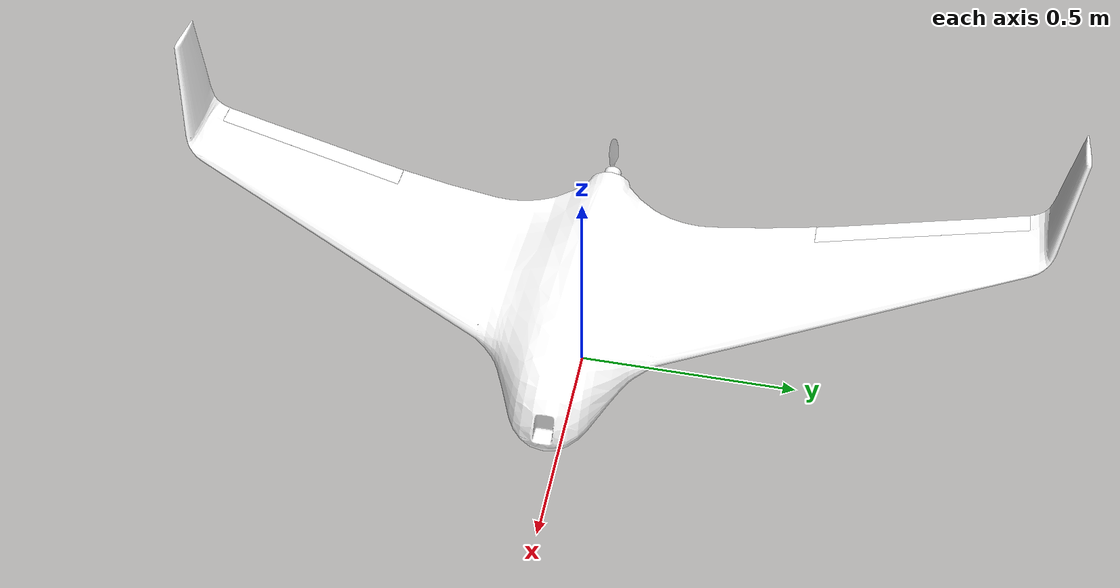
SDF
<?xml version="1.0"?>
<sdf version="1.7">
  <model name="skywalker_x8">
    <pose>0 0 0.246 0 0 0</pose>

    <link name='base_link'>
      <pose>0 0 0 0 0 0</pose>
      <inertial>
        <pose>0 0 0 0 0 0</pose>
        <mass>4.5</mass>
        <inertia>
          <ixx>0.45</ixx>
          <ixy>0</ixy>
          <ixz>0.06</ixz>
          <iyy>0.325</iyy>
          <iyz>0</iyz>
          <izz>0.75</izz>
        </inertia>
      </inertial>
      <collision name="skid_nose">
        <pose> 0.24  0.00 -0.201 0 0 0</pose>
        <geometry><sphere><radius>0.045</radius></sphere></geometry>
        <surface>
          <friction><ode><mu>0.15</mu><mu2>0.15</mu2></ode></friction>
          <contact><ode><min_depth>0.003</min_depth><kp>1e6</kp><kd>100</kd></ode></contact>
          <bounce><restitution_coefficient>0</restitution_coefficient></bounce>
        </surface>
      </collision>
      <collision name="skid_left">
        <pose>-0.22  0.30 -0.201 0 0 0</pose>
        <geometry><sphere><radius>0.045</radius></sphere></geometry>
        <surface>
          <friction><ode><mu>0.15</mu><mu2>0.15</mu2></ode></friction>
          <contact><ode><min_depth>0.003</min_depth><kp>1e6</kp><kd>100</kd></ode></contact>
          <bounce><restitution_coefficient>0</restitution_coefficient></bounce>
        </surface>
      </collision>
      <collision name="skid_right">
        <pose>-0.22 -0.30 -0.201 0 0 0</pose>
        <geometry><sphere><radius>0.045</radius></sphere></geometry>
        <surface>
          <friction><ode><mu>0.15</mu><mu2>0.15</mu2></ode></friction>
          <contact><ode><min_depth>0.003</min_depth><kp>1e6</kp><kd>100</kd></ode></contact>
          <bounce><restitution_coefficient>0</restitution_coefficient></bounce>
        </surface>
      </collision>
      <visual name='base_link_visual'>
        <geometry>
          <mesh>
            <uri>model://skywalker_x8/meshes/x8_wing.dae</uri>
          </mesh>
        </geometry>
        <material>
          <diffuse>1.0 1.0 1.0</diffuse>
          <specular>1.0 1.0 1.0</specular>
          <pbr>
            <metal>
                <albedo_map>model://skywalker_x8/materials/textures/x8.tga</albedo_map>
                <metalness>0.1</metalness>
            </metal>
          </pbr>
        </material>
      </visual>
      <visual name='m4'>
        <pose>-0.361 0 0.0 0.000000 1.570796 0.000000</pose>
        <geometry>
          <cylinder>
            <length>0.035</length>
            <radius>0.02</radius>
          </cylinder>
        </geometry>
        <material>
          <ambient>1 1 1</ambient>
          <diffuse>1 1 1</diffuse>
          <specular>1 1 1</specular>
          <pbr>
            <metal>
              <albedo_map>model://skywalker_x8/materials/textures/blue_metal/blue_metal_basecolor.jpg</albedo_map>
              <metalness_map>model://skywalker_x8/materials/textures/blue_metal/blue_metal_metallic.jpg</metalness_map>
              <normal_map>model://skywalker_x8/materials/textures/blue_metal/blue_metal_normal.jpg</normal_map>
              <roughness_map>model://skywalker_x8/materials/textures/blue_metal/blue_metal_roughness.jpg</roughness_map>
              <roughness>1.0</roughness>
              <metalness>1.0</metalness>
            </metal>
          </pbr>
        </material>
      </visual>
      <!-- save for debugging use -->
      <sensor name="fpv_camera" type="camera">
        <pose>0.55 0 0.06 0 0.140 0</pose>
        <always_on>1</always_on>
        <update_rate>10</update_rate>
        <visualize>true</visualize>
        <camera name="fpv">
          <horizontal_fov>1.204</horizontal_fov>
          <image><width>1280</width><height>720</height><format>R8G8B8</format></image>
          <clip><near>0.1</near><far>1500</far></clip>
        </camera>
        <plugin name="camera_stream" filename="libCameraStreamPlugin.so">
          <port>8610</port>
          <label>fixed-wing FPV</label>
          <quality>70</quality>
          <shrink>1</shrink>
          <sleep_when_idle>0</sleep_when_idle>
        </plugin>
      </sensor>

    </link>

    <link name='rotor_pusher'>
      <pose>-0.385 0 0.0 0.000000 1.570796 0.000000</pose>
      <inertial>
        <mass>0.025</mass>
        <inertia>
          <ixx>9.75e-06</ixx>
          <ixy>0</ixy>
          <ixz>0</ixz>
          <iyy>0.000166704</iyy>
          <iyz>0</iyz>
          <izz>0.000167604</izz>
        </inertia>
      </inertial>
      <collision name='collision'>
        <pose>0 0 0 0 0 0</pose>
        <geometry>
          <cylinder>
            <length>0.005</length>
            <radius>0.065</radius>
          </cylinder>
        </geometry>
      </collision>
      <visual name='visual'>
        <pose>0 0 0 0 0 0</pose>
        <geometry>
          <mesh>
            <scale>0.8 0.8 0.8</scale>
            <uri>model://skywalker_x8/meshes/iris_prop_ccw.dae</uri>
          </mesh>
        </geometry>
        <material>
          <diffuse>1.0 1.0 1.0</diffuse>
          <specular>1.0 1.0 1.0</specular>
          <pbr>
            <metal>
                <albedo_map>model://skywalker_x8/materials/textures/x8.tga</albedo_map>
                <metalness>0.5</metalness>
            </metal>
          </pbr>
        </material>
      </visual>
    </link>
    <joint name='rotor_pusher_joint' type='revolute'>
      <child>rotor_pusher</child>
      <parent>base_link</parent>
      <axis>
        <xyz>0 0 1</xyz>
        <limit>
          <lower>-1e+16</lower>
          <upper>1e+16</upper>
        </limit>
        <dynamics>
          <damping>0.002</damping>
        </dynamics>
        <use_parent_model_frame>1</use_parent_model_frame>
      </axis>
    </joint>

    <link name="left_elevon">
      <inertial>
        <mass>0.1</mass>
        <inertia>
          <ixx>0.000102319</ixx>
          <ixy>0</ixy>
          <iyy>0.00334417</iyy>
          <ixz>0</ixz>
          <iyz>0</iyz>
          <izz>0.003446072</izz>
        </inertia>
        <pose>-0.30 0.75 -0.005 0 0 0</pose>
      </inertial>
      <visual name='left_elevon_visual'>
        <geometry>
          <mesh>
            <uri>model://skywalker_x8/meshes/x8_elevon_left.dae</uri>
          </mesh>
        </geometry>
        <material>
          <diffuse>1.0 1.0 1.0</diffuse>
          <specular>1.0 1.0 1.0</specular>
          <pbr>
            <metal>
                <albedo_map>model://skywalker_x8/materials/textures/x8.tga</albedo_map>
                <metalness>0.1</metalness>
            </metal>
          </pbr>
        </material>
      </visual>
    </link>

    <link name="right_elevon">
      <inertial>
        <mass>0.1</mass>
        <inertia>
          <ixx>0.000102319</ixx>
          <ixy>0</ixy>
          <iyy>0.00334417</iyy>
          <ixz>0</ixz>
          <iyz>0</iyz>
          <izz>0.003446072</izz>
        </inertia>
        <pose>-0.30 -0.75 -0.005 0 0 0</pose>
      </inertial>
      <visual name='right_elevon_visual'>
        <geometry>
          <mesh>
            <uri>model://skywalker_x8/meshes/x8_elevon_right.dae</uri>
          </mesh>
        </geometry>
        <material>
          <diffuse>1.0 1.0 1.0</diffuse>
          <specular>1.0 1.0 1.0</specular>
          <pbr>
            <metal>
                <albedo_map>model://skywalker_x8/materials/textures/x8.tga</albedo_map>
                <metalness>0.1</metalness>
            </metal>
          </pbr>
        </material>
      </visual>
    </link>

    <!-- Joint range -30/+30 deg. -->
    <joint name='left_elevon_joint' type='revolute'>
      <parent>base_link</parent>
      <child>left_elevon</child>
      <pose>-0.27 0.6 -0.005 0 0 0.265</pose>
      <axis>
        <xyz>0 1 0</xyz>
        <limit>
          <lower>-0.53</lower>
          <upper>0.53</upper>
        </limit>
        <dynamics>
          <damping>0.1</damping>
        </dynamics>
      </axis>
    </joint>

    <!-- Joint range -30/+30 deg. -->
    <joint name='right_elevon_joint' type='revolute'>
      <parent>base_link</parent>
      <child>right_elevon</child>
      <pose>-0.27 -0.6 -0.005 0 0 -0.265</pose>
      <axis>
        <xyz>0 1 0</xyz>
        <limit>
          <lower>-0.53</lower>
          <upper>0.53</upper>
        </limit>
        <dynamics>
          <damping>0.1</damping>
        </dynamics>
      </axis>
    </joint>

    <!-- sensors -->
    <link name='imu_link'>
      <inertial>
        <pose>0 0 0 0 0 0</pose>
        <mass>0.15</mass>
        <inertia>
          <ixx>0.00002</ixx>
          <ixy>0</ixy>
          <ixz>0</ixz>
          <iyy>0.00002</iyy>
          <iyz>0</iyz>
          <izz>0.00002</izz>
        </inertia>
      </inertial>
      <sensor name="imu_sensor" type="imu">
        <pose>0 0 0 3.141593 0.000000 0.000000</pose>
        <always_on>1</always_on>
        <update_rate>1000.0</update_rate>
      </sensor>
    </link>
    <joint name='skywalker_x8/imu_joint' type='revolute'>
      <child>imu_link</child>
      <parent>base_link</parent>
      <axis>
        <xyz>0 0 1</xyz>
        <limit>
          <lower>0</lower>
          <upper>0</upper>
          <effort>0</effort>
          <velocity>0</velocity>
        </limit>
        <dynamics>
          <damping>1.0</damping>
        </dynamics>
        <use_parent_model_frame>1</use_parent_model_frame>
      </axis>
    </joint>

    <!-- plugins -->

    <!-- rotor_pusher lift-drag -->
    <plugin filename="libLiftDragPlugin.so" name="lift_drag_1">
      <a0>0.30</a0>
      <alpha_stall>1.4</alpha_stall>
      <cla>4.2500</cla>
      <cda>0.10</cda>
      <cma>0.0</cma>
      <cla_stall>-0.025</cla_stall>
      <cda_stall>0.0</cda_stall>
      <cma_stall>0.0</cma_stall>
      <area>0.02</area>
      <air_density>1.2041</air_density>
      <cp>0.074205 0 0</cp>
      <forward>0 1 0</forward>
      <upward>0 0 1</upward>
      <link_name>rotor_pusher</link_name>
    </plugin>
    <plugin filename="libLiftDragPlugin.so" name="lift_drag_2">
      <a0>0.30</a0>
      <alpha_stall>1.4</alpha_stall>
      <cla>4.2500</cla>
      <cda>0.10</cda>
      <cma>0.0</cma>
      <cla_stall>-0.025</cla_stall>
      <cda_stall>0.0</cda_stall>
      <cma_stall>0.0</cma_stall>
      <area>0.02</area>
      <air_density>1.2041</air_density>
      <cp>-0.074205 0 0</cp>
      <forward>0 -1 0</forward>
      <upward>0 0 1</upward>
      <link_name>rotor_pusher</link_name>
    </plugin>
    <!-- wing lift-drag -->
    <plugin filename="libLiftDragPlugin.so" name="lift_drag_3">
      <a0>0.13</a0>
      <cla>3.7</cla>
      <cda>0.06417112299</cda>
      <cma>0.0</cma>
      <alpha_stall>0.3391428111</alpha_stall>
      <cla_stall>-3.85</cla_stall>
      <cda_stall>-0.9233984055</cda_stall>
      <cma_stall>0.0</cma_stall>
      <cp>0.01 0 0</cp>
      <area>0.80</area>
      <air_density>1.2041</air_density>
      <forward>1 0 0</forward>
      <upward>0 0 1</upward>
      <link_name>base_link</link_name>
    </plugin>
    <!-- left_elevon lift-drag -->
    <plugin filename="libLiftDragPlugin.so" name="lift_drag_4">
      <a0>0.15</a0>
      <cla>6.8</cla>
      <cda>0.06417112299</cda>
      <cma>0.0</cma>
      <alpha_stall>0.6391428111</alpha_stall>
      <cla_stall>-3.85</cla_stall>
      <cda_stall>-0.9233984055</cda_stall>
      <cma_stall>0.0</cma_stall>
      <cp>-0.30 0.75 -0.005</cp>
      <area>0.10</area>
      <air_density>1.2041</air_density>
      <forward>1 0 0</forward>
      <upward>0 0 1</upward>
      <link_name>base_link</link_name>
      <control_joint_name>left_elevon_joint</control_joint_name>
      <control_joint_rad_to_cl>-5.0</control_joint_rad_to_cl>
    </plugin>
    <!-- right_elevon lift-drag -->
    <plugin filename="libLiftDragPlugin.so" name="lift_drag_5">
      <a0>0.15</a0>
      <cla>6.8</cla>
      <cda>0.06417112299</cda>
      <cma>0.0</cma>
      <alpha_stall>0.6391428111</alpha_stall>
      <cla_stall>-3.85</cla_stall>
      <cda_stall>-0.9233984055</cda_stall>
      <cma_stall>0.0</cma_stall>
      <cp>-0.30 -0.75 -0.005</cp>
      <area>0.10</area>
      <air_density>1.2041</air_density>
      <forward>1 0 0</forward>
      <upward>0 0 1</upward>
      <link_name>base_link</link_name>
      <control_joint_name>right_elevon_joint</control_joint_name>
      <control_joint_rad_to_cl>-5.0</control_joint_rad_to_cl>
    </plugin>
    <!-- left_winglet lift-drag -->
    <plugin filename="libLiftDragPlugin.so" name="lift_drag_6">
      <a0>0.0</a0>
      <cla>4.752798721</cla>
      <cda>0.6417112299</cda>
      <cma>0.0</cma>
      <alpha_stall>0.3391428111</alpha_stall>
      <cla_stall>-3.85</cla_stall>
      <cda_stall>-0.9233984055</cda_stall>
      <cma_stall>0.0</cma_stall>
      <cp>-0.36 1.04 0.08</cp>
      <area>0.12</area>
      <air_density>1.2041</air_density>
      <forward>1 0 0</forward>
      <upward>0 1 0</upward>
      <link_name>base_link</link_name>
    </plugin>
    <!-- right_winglet lift-drag -->
    <plugin filename="libLiftDragPlugin.so" name="lift_drag_7">
      <a0>0.0</a0>
      <cla>4.752798721</cla>
      <cda>0.6417112299</cda>
      <cma>0.0</cma>
      <alpha_stall>0.3391428111</alpha_stall>
      <cla_stall>-3.85</cla_stall>
      <cda_stall>-0.9233984055</cda_stall>
      <cma_stall>0.0</cma_stall>
      <cp>-0.36 -1.04 0.08</cp>
      <area>0.12</area>
      <air_density>1.2041</air_density>
      <forward>1 0 0</forward>
      <upward>0 -1 0</upward>
      <link_name>base_link</link_name>
    </plugin>

    <!-- original from standard_vtol -->
    <!-- left_wing_lift-drag -->
    <!-- right_wing_lift-drag -->

    <plugin name="ardupilot_plugin" filename="libArduPilotPlugin.so">
      <worldFrame>ENU</worldFrame>
      <!-- Port settings -->
      <listen_addr>10.23.0.5</listen_addr>
        <fdm_addr>10.23.0.101</fdm_addr>
      <fdm_port_in>9012</fdm_port_in>
        <fdm_port_out>9013</fdm_port_out>
      <connectionTimeoutMaxCount>5</connectionTimeoutMaxCount>
      <lock_step>1</lock_step>

      <modelXYZToAirplaneXForwardZDown>0 0 0 3.141593 0.000000 0.000000</modelXYZToAirplaneXForwardZDown>

      <!-- Sensors -->
      <imuName>imu_sensor</imuName>

      <!--
          incoming control command [0, 1]
          so offset it by 0 to get [0, 1]
          and divide max target by 1.
          offset = 0
          multiplier = 838 max rpm / 1 = 838
        -->

      <!--
          SERVO3_FUNCTION   70 (Throttle)
          SERVO3_MAX        2000
          SERVO3_MIN        1000
          SERVO3_REVERSED   0
          SERVO3_TRIM       1000
       -->
      <control channel="2">
        <jointName>rotor_pusher_joint</jointName>
          <useForce>0</useForce>
        <multiplier>838</multiplier>
        <offset>0</offset>
        <type>VELOCITY</type>
        <p_gain>0.20</p_gain>
        <i_gain>0</i_gain>
        <d_gain>0</d_gain>
        <i_max>0</i_max>
        <i_min>0</i_min>
        <cmd_max>2.5</cmd_max>
        <cmd_min>-2.5</cmd_min>
      </control>

      <control channel="0">
        <jointName>left_elevon_joint</jointName>
        <useForce>1</useForce>
        <multiplier>1.048</multiplier>
        <offset>-0.5</offset>
        <type>POSITION</type>
        <p_gain>10.0</p_gain>
        <i_gain>0</i_gain>
        <d_gain>0</d_gain>
        <i_max>0</i_max>
        <i_min>0</i_min>
        <cmd_max>2.5</cmd_max>
        <cmd_min>-2.5</cmd_min>
      </control>

      <!--
          SERVO2_FUNCTION   78 (Elevon Right)
          SERVO2_MAX        1900
          SERVO2_MIN        1100
          SERVO2_REVERSED   0
          SERVO2_TRIM       1500
       -->
      <control channel="1">
        <jointName>right_elevon_joint</jointName>
        <useForce>1</useForce>
        <multiplier>1.048</multiplier>
        <offset>-0.5</offset>
        <type>POSITION</type>
        <p_gain>10.0</p_gain>
        <i_gain>0</i_gain>
        <d_gain>0</d_gain>
        <i_max>0</i_max>
        <i_min>0</i_min>
        <cmd_max>2.5</cmd_max>
        <cmd_min>-2.5</cmd_min>
      </control>

    </plugin>
  </model>
</sdf>
